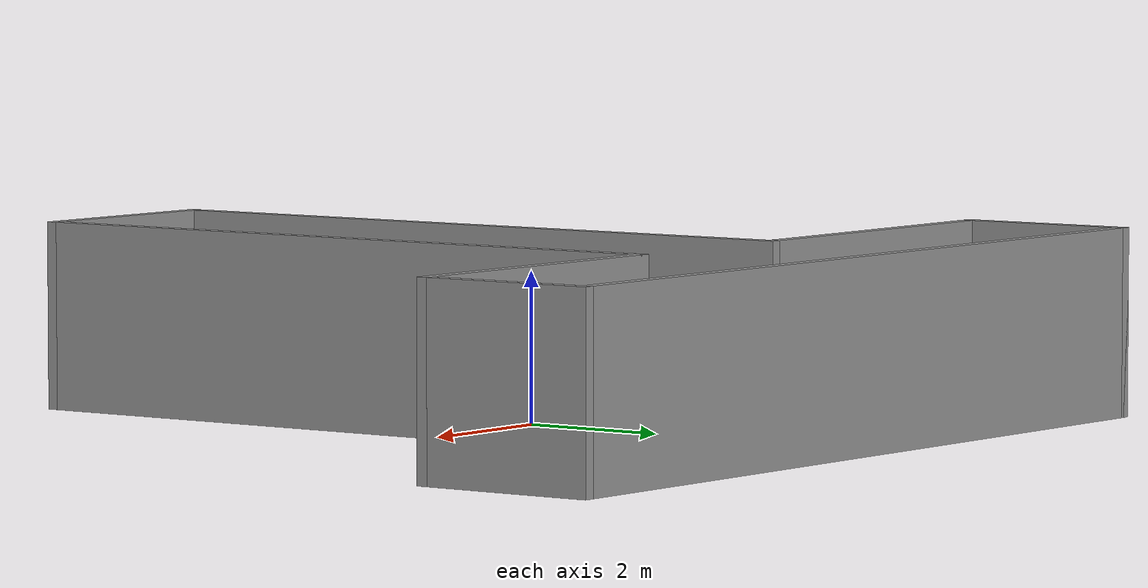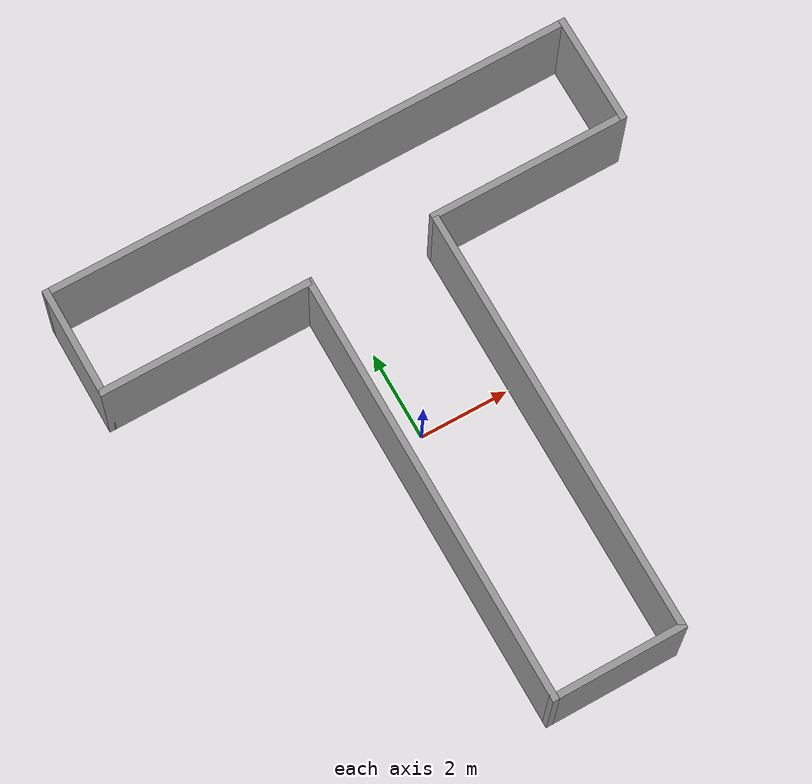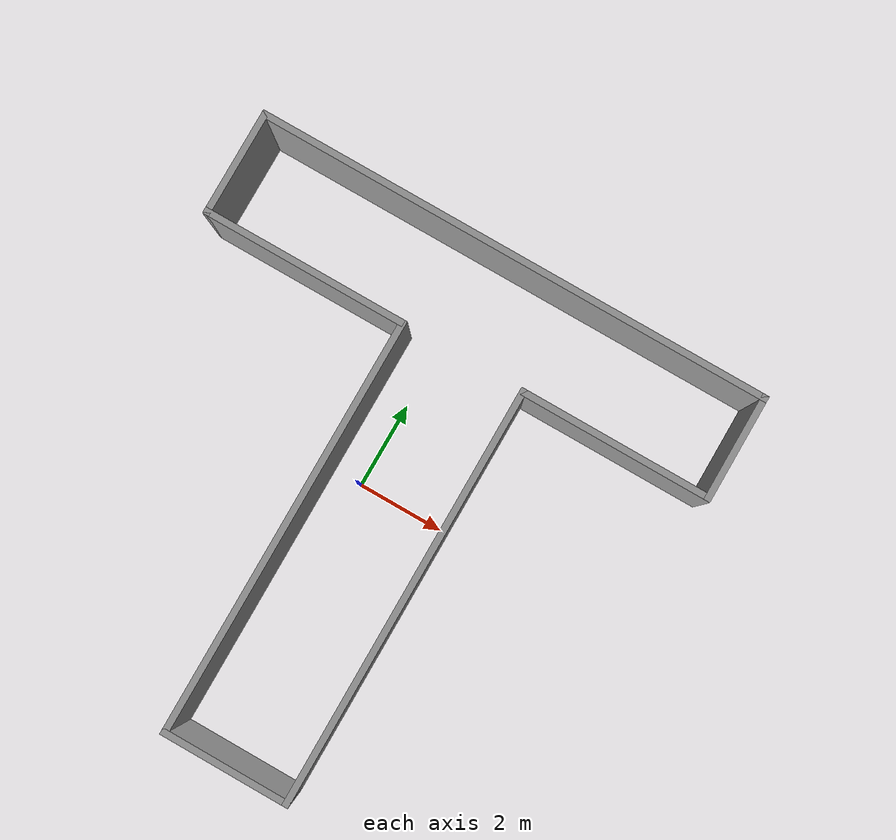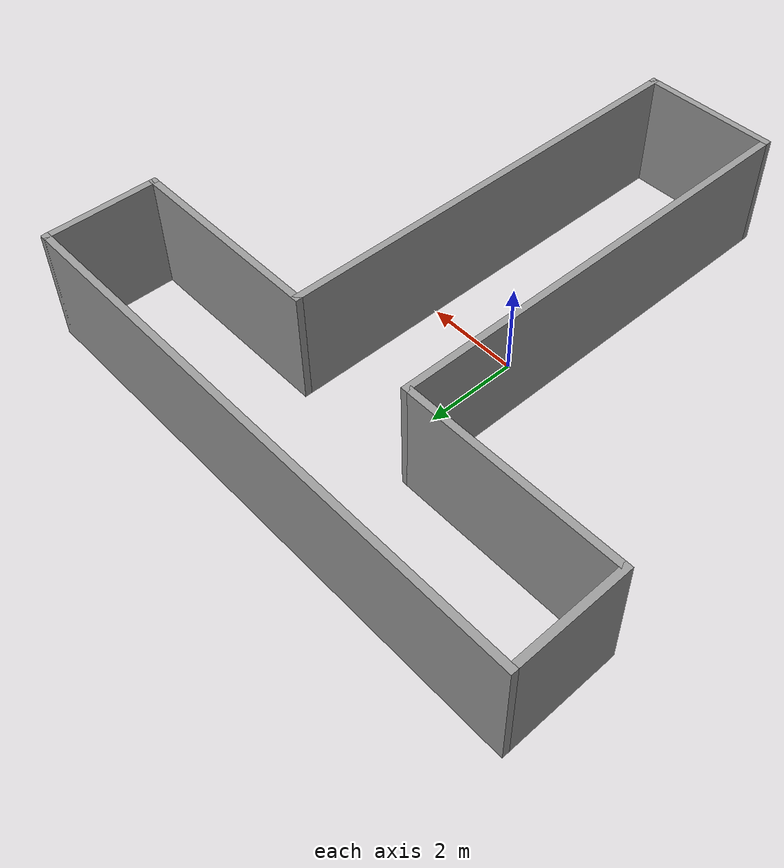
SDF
<?xml version='1.0'?>
<sdf version='1.7'>
  <model name='T_section'>
    <pose>0.533448 -0.349633 0 0 -0 0</pose>
    <link name='Wall_52'>
      <collision name='Wall_52_Collision'>
        <geometry>
          <box>
            <size>12 0.15 2.5</size>
          </box>
        </geometry>
        <pose>0 0 1.25 0 -0 0</pose>
      </collision>
      <visual name='Wall_52_Visual'>
        <pose>0 0 1.25 0 -0 0</pose>
        <geometry>
          <box>
            <size>12 0.15 2.5</size>
          </box>
        </geometry>
        <material>
          <script>
            <uri>file://media/materials/scripts/gazebo.material</uri>
            <name>Gazebo/Grey</name>
          </script>
          <ambient>0.180392 0.203922 0.211765 1</ambient>
        </material>
        <meta>
          <layer>0</layer>
        </meta>
      </visual>
      <pose>0 5.975 0 0 -0 0</pose>
    </link>
    <link name='Wall_53'>
      <collision name='Wall_53_Collision'>
        <geometry>
          <box>
            <size>2.5 0.15 2.5</size>
          </box>
        </geometry>
        <pose>0 0 1.25 0 -0 0</pose>
      </collision>
      <visual name='Wall_53_Visual'>
        <pose>0 0 1.25 0 -0 0</pose>
        <geometry>
          <box>
            <size>2.5 0.15 2.5</size>
          </box>
        </geometry>
        <material>
          <script>
            <uri>file://media/materials/scripts/gazebo.material</uri>
            <name>Gazebo/Grey</name>
          </script>
          <ambient>0.180392 0.203922 0.211765 1</ambient>
        </material>
        <meta>
          <layer>0</layer>
        </meta>
      </visual>
      <pose>5.925 4.8 0 0 -0 -1.5708</pose>
    </link>
    <link name='Wall_54'>
      <collision name='Wall_54_Collision'>
        <geometry>
          <box>
            <size>4.5 0.15 2.5</size>
          </box>
        </geometry>
        <pose>0 0 1.25 0 -0 0</pose>
      </collision>
      <visual name='Wall_54_Visual'>
        <pose>0 0 1.25 0 -0 0</pose>
        <geometry>
          <box>
            <size>4.5 0.15 2.5</size>
          </box>
        </geometry>
        <material>
          <script>
            <uri>file://media/materials/scripts/gazebo.material</uri>
            <name>Gazebo/Grey</name>
          </script>
          <ambient>0.180392 0.203922 0.211765 1</ambient>
        </material>
        <meta>
          <layer>0</layer>
        </meta>
      </visual>
      <pose>3.75 3.625 0 0 -0 3.14159</pose>
    </link>
    <link name='Wall_55'>
      <collision name='Wall_55_Collision'>
        <geometry>
          <box>
            <size>9.75 0.15 2.5</size>
          </box>
        </geometry>
        <pose>0 0 1.25 0 -0 0</pose>
      </collision>
      <visual name='Wall_55_Visual'>
        <pose>0 0 1.25 0 -0 0</pose>
        <geometry>
          <box>
            <size>9.75 0.15 2.5</size>
          </box>
        </geometry>
        <material>
          <script>
            <uri>file://media/materials/scripts/gazebo.material</uri>
            <name>Gazebo/Grey</name>
          </script>
          <ambient>0.180392 0.203922 0.211765 1</ambient>
        </material>
        <meta>
          <layer>0</layer>
        </meta>
      </visual>
      <pose>1.575 -1.175 0 0 -0 -1.5708</pose>
    </link>
    <link name='Wall_56'>
      <collision name='Wall_56_Collision'>
        <geometry>
          <box>
            <size>3 0.15 2.5</size>
          </box>
        </geometry>
        <pose>0 0 1.25 0 -0 0</pose>
      </collision>
      <visual name='Wall_56_Visual'>
        <pose>0 0 1.25 0 -0 0</pose>
        <geometry>
          <box>
            <size>3 0.15 2.5</size>
          </box>
        </geometry>
        <material>
          <script>
            <uri>file://media/materials/scripts/gazebo.material</uri>
            <name>Gazebo/Grey</name>
          </script>
          <ambient>0.180392 0.203922 0.211765 1</ambient>
        </material>
        <meta>
          <layer>0</layer>
        </meta>
      </visual>
      <pose>0.15 -5.975 0 0 -0 3.14159</pose>
    </link>
    <link name='Wall_57'>
      <collision name='Wall_57_Collision'>
        <geometry>
          <box>
            <size>9.75 0.15 2.5</size>
          </box>
        </geometry>
        <pose>0 0 1.25 0 -0 0</pose>
      </collision>
      <visual name='Wall_57_Visual'>
        <pose>0 0 1.25 0 -0 0</pose>
        <geometry>
          <box>
            <size>9.75 0.15 2.5</size>
          </box>
        </geometry>
        <material>
          <script>
            <uri>file://media/materials/scripts/gazebo.material</uri>
            <name>Gazebo/Grey</name>
          </script>
          <ambient>0.180392 0.203922 0.211765 1</ambient>
        </material>
        <meta>
          <layer>0</layer>
        </meta>
      </visual>
      <pose>-1.275 -1.175 0 0 -0 1.5708</pose>
    </link>
    <link name='Wall_59'>
      <collision name='Wall_59_Collision'>
        <geometry>
          <box>
            <size>2.5 0.15 2.5</size>
          </box>
        </geometry>
        <pose>0 0 1.25 0 -0 0</pose>
      </collision>
      <visual name='Wall_59_Visual'>
        <pose>0 0 1.25 0 -0 0</pose>
        <geometry>
          <box>
            <size>2.5 0.15 2.5</size>
          </box>
        </geometry>
        <material>
          <script>
            <uri>file://media/materials/scripts/gazebo.material</uri>
            <name>Gazebo/Grey</name>
          </script>
          <ambient>0.180392 0.203922 0.211765 1</ambient>
        </material>
        <meta>
          <layer>0</layer>
        </meta>
      </visual>
      <pose>-5.925 4.8 0 0 -0 -1.5708</pose>
    </link>
    <link name='Wall_60'>
      <collision name='Wall_60_Collision'>
        <geometry>
          <box>
            <size>4.75 0.15 2.5</size>
          </box>
        </geometry>
        <pose>0 0 1.25 0 -0 0</pose>
      </collision>
      <visual name='Wall_60_Visual'>
        <pose>0 0 1.25 0 -0 0</pose>
        <geometry>
          <box>
            <size>4.75 0.15 2.5</size>
          </box>
        </geometry>
        <material>
          <script>
            <uri>file://media/materials/scripts/gazebo.material</uri>
            <name>Gazebo/Grey</name>
          </script>
          <ambient>0.180392 0.203922 0.211765 1</ambient>
        </material>
        <meta>
          <layer>0</layer>
        </meta>
      </visual>
      <pose>-3.625 3.625 0 0 -0 0</pose>
    </link>
    <static>1</static>
  </model>
</sdf>
